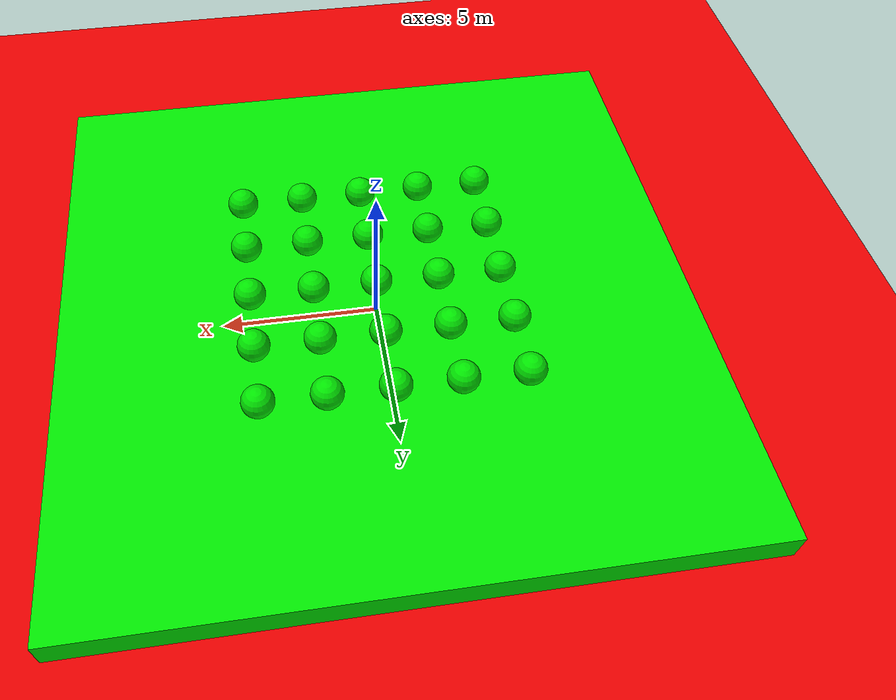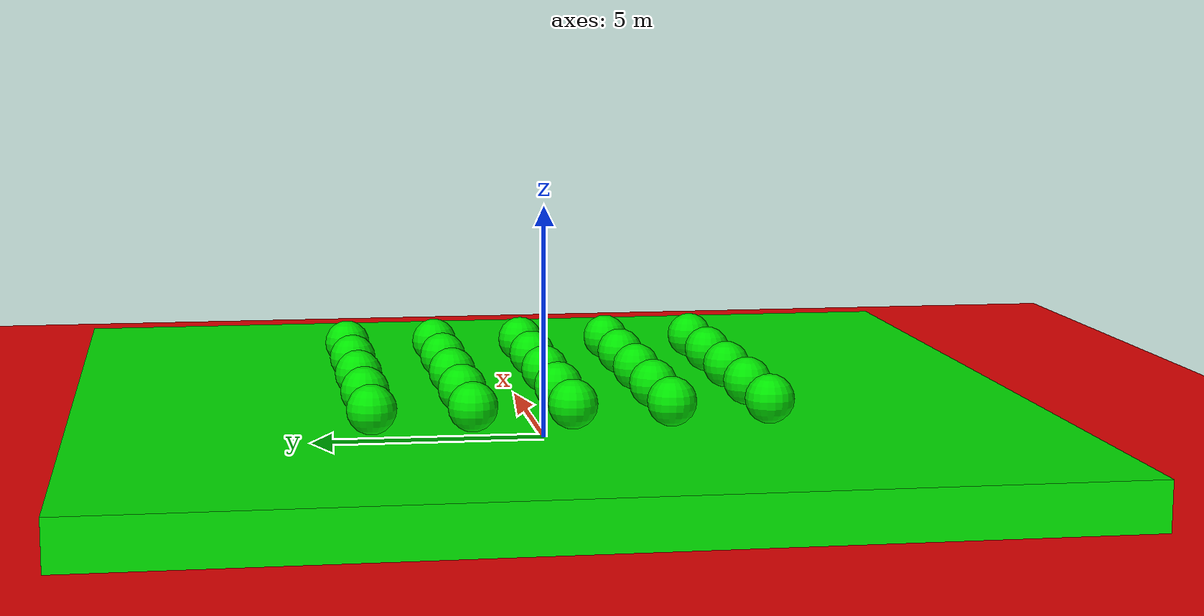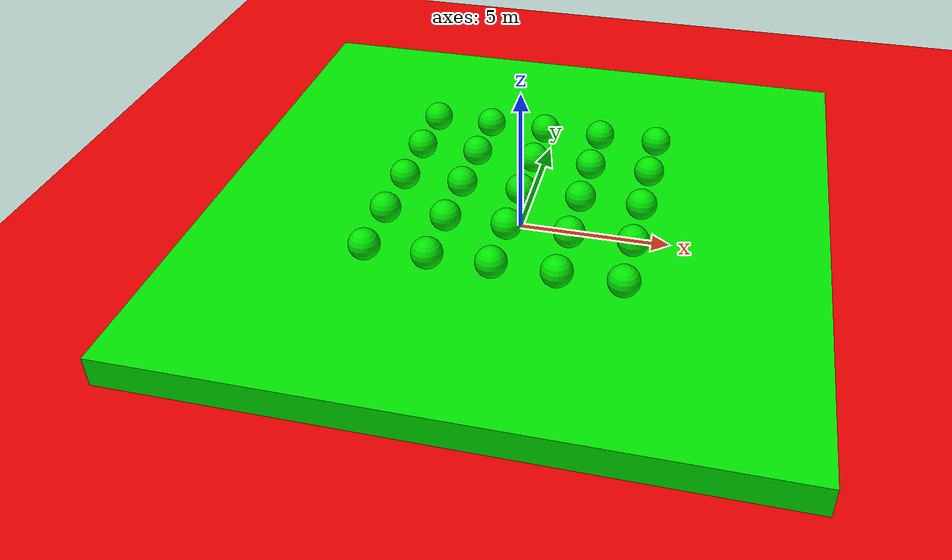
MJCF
<mujoco>
    <option cone="elliptic"/>

    <worldbody>
        <geom type="plane" size="100 100 5" rgba=".9 0 0 1" friction="0.4 0 0"/>
        <body pos="0 0 0.5">
            <inertial pos="0 0 0" mass="10" diaginertia="334.16666666666669 334.16666666666669 666.66666666666674"/>
            <joint type="free"/>
            <geom type="box" size="10.0 10.0 0.499999" rgba="0 .9 0 1" friction="0.4 0 0"/>
        </body>
        <body pos="-4.000000 -4.000000 1.499998">
            <inertial pos="0 0 0" mass="1" diaginertia=".1 .1 .1"/>
            <joint type="free"/>
            <geom type="sphere" size=".5" rgba="0 .9 0 1" friction="0.8 0 0"/>
        </body>
        <body pos="-4.000000 -2.000000 1.499998">
            <inertial pos="0 0 0" mass="1" diaginertia=".1 .1 .1"/>
            <joint type="free"/>
            <geom type="sphere" size=".5" rgba="0 .9 0 1" friction="0.8 0 0"/>
        </body>
        <body pos="-4.000000 0.000000 1.499998">
            <inertial pos="0 0 0" mass="1" diaginertia=".1 .1 .1"/>
            <joint type="free"/>
            <geom type="sphere" size=".5" rgba="0 .9 0 1" friction="0.8 0 0"/>
        </body>
        <body pos="-4.000000 2.000000 1.499998">
            <inertial pos="0 0 0" mass="1" diaginertia=".1 .1 .1"/>
            <joint type="free"/>
            <geom type="sphere" size=".5" rgba="0 .9 0 1" friction="0.8 0 0"/>
        </body>
        <body pos="-4.000000 4.000000 1.499998">
            <inertial pos="0 0 0" mass="1" diaginertia=".1 .1 .1"/>
            <joint type="free"/>
            <geom type="sphere" size=".5" rgba="0 .9 0 1" friction="0.8 0 0"/>
        </body>
        <body pos="-2.000000 -4.000000 1.499998">
            <inertial pos="0 0 0" mass="1" diaginertia=".1 .1 .1"/>
            <joint type="free"/>
            <geom type="sphere" size=".5" rgba="0 .9 0 1" friction="0.8 0 0"/>
        </body>
        <body pos="-2.000000 -2.000000 1.499998">
            <inertial pos="0 0 0" mass="1" diaginertia=".1 .1 .1"/>
            <joint type="free"/>
            <geom type="sphere" size=".5" rgba="0 .9 0 1" friction="0.8 0 0"/>
        </body>
        <body pos="-2.000000 0.000000 1.499998">
            <inertial pos="0 0 0" mass="1" diaginertia=".1 .1 .1"/>
            <joint type="free"/>
            <geom type="sphere" size=".5" rgba="0 .9 0 1" friction="0.8 0 0"/>
        </body>
        <body pos="-2.000000 2.000000 1.499998">
            <inertial pos="0 0 0" mass="1" diaginertia=".1 .1 .1"/>
            <joint type="free"/>
            <geom type="sphere" size=".5" rgba="0 .9 0 1" friction="0.8 0 0"/>
        </body>
        <body pos="-2.000000 4.000000 1.499998">
            <inertial pos="0 0 0" mass="1" diaginertia=".1 .1 .1"/>
            <joint type="free"/>
            <geom type="sphere" size=".5" rgba="0 .9 0 1" friction="0.8 0 0"/>
        </body>
        <body pos="0.000000 -4.000000 1.499998">
            <inertial pos="0 0 0" mass="1" diaginertia=".1 .1 .1"/>
            <joint type="free"/>
            <geom type="sphere" size=".5" rgba="0 .9 0 1" friction="0.8 0 0"/>
        </body>
        <body pos="0.000000 -2.000000 1.499998">
            <inertial pos="0 0 0" mass="1" diaginertia=".1 .1 .1"/>
            <joint type="free"/>
            <geom type="sphere" size=".5" rgba="0 .9 0 1" friction="0.8 0 0"/>
        </body>
        <body pos="0.000000 0.000000 1.499998">
            <inertial pos="0 0 0" mass="1" diaginertia=".1 .1 .1"/>
            <joint type="free"/>
            <geom type="sphere" size=".5" rgba="0 .9 0 1" friction="0.8 0 0"/>
        </body>
        <body pos="0.000000 2.000000 1.499998">
            <inertial pos="0 0 0" mass="1" diaginertia=".1 .1 .1"/>
            <joint type="free"/>
            <geom type="sphere" size=".5" rgba="0 .9 0 1" friction="0.8 0 0"/>
        </body>
        <body pos="0.000000 4.000000 1.499998">
            <inertial pos="0 0 0" mass="1" diaginertia=".1 .1 .1"/>
            <joint type="free"/>
            <geom type="sphere" size=".5" rgba="0 .9 0 1" friction="0.8 0 0"/>
        </body>
        <body pos="2.000000 -4.000000 1.499998">
            <inertial pos="0 0 0" mass="1" diaginertia=".1 .1 .1"/>
            <joint type="free"/>
            <geom type="sphere" size=".5" rgba="0 .9 0 1" friction="0.8 0 0"/>
        </body>
        <body pos="2.000000 -2.000000 1.499998">
            <inertial pos="0 0 0" mass="1" diaginertia=".1 .1 .1"/>
            <joint type="free"/>
            <geom type="sphere" size=".5" rgba="0 .9 0 1" friction="0.8 0 0"/>
        </body>
        <body pos="2.000000 0.000000 1.499998">
            <inertial pos="0 0 0" mass="1" diaginertia=".1 .1 .1"/>
            <joint type="free"/>
            <geom type="sphere" size=".5" rgba="0 .9 0 1" friction="0.8 0 0"/>
        </body>
        <body pos="2.000000 2.000000 1.499998">
            <inertial pos="0 0 0" mass="1" diaginertia=".1 .1 .1"/>
            <joint type="free"/>
            <geom type="sphere" size=".5" rgba="0 .9 0 1" friction="0.8 0 0"/>
        </body>
        <body pos="2.000000 4.000000 1.499998">
            <inertial pos="0 0 0" mass="1" diaginertia=".1 .1 .1"/>
            <joint type="free"/>
            <geom type="sphere" size=".5" rgba="0 .9 0 1" friction="0.8 0 0"/>
        </body>
        <body pos="4.000000 -4.000000 1.499998">
            <inertial pos="0 0 0" mass="1" diaginertia=".1 .1 .1"/>
            <joint type="free"/>
            <geom type="sphere" size=".5" rgba="0 .9 0 1" friction="0.8 0 0"/>
        </body>
        <body pos="4.000000 -2.000000 1.499998">
            <inertial pos="0 0 0" mass="1" diaginertia=".1 .1 .1"/>
            <joint type="free"/>
            <geom type="sphere" size=".5" rgba="0 .9 0 1" friction="0.8 0 0"/>
        </body>
        <body pos="4.000000 0.000000 1.499998">
            <inertial pos="0 0 0" mass="1" diaginertia=".1 .1 .1"/>
            <joint type="free"/>
            <geom type="sphere" size=".5" rgba="0 .9 0 1" friction="0.8 0 0"/>
        </body>
        <body pos="4.000000 2.000000 1.499998">
            <inertial pos="0 0 0" mass="1" diaginertia=".1 .1 .1"/>
            <joint type="free"/>
            <geom type="sphere" size=".5" rgba="0 .9 0 1" friction="0.8 0 0"/>
        </body>
        <body pos="4.000000 4.000000 1.499998">
            <inertial pos="0 0 0" mass="1" diaginertia=".1 .1 .1"/>
            <joint type="free"/>
            <geom type="sphere" size=".5" rgba="0 .9 0 1" friction="0.8 0 0"/>
        </body>
    </worldbody>
</mujoco>
